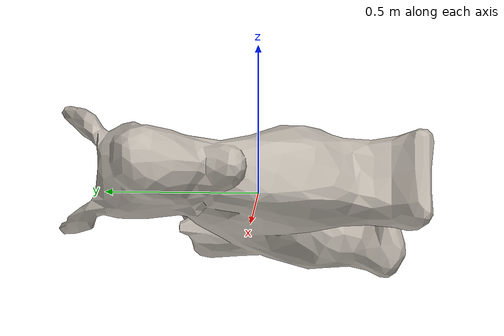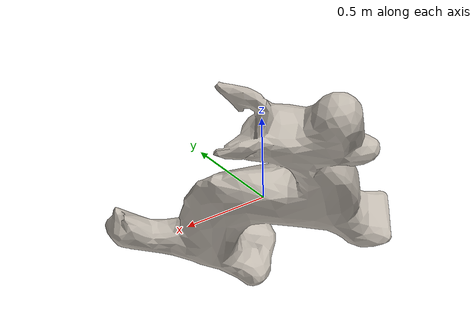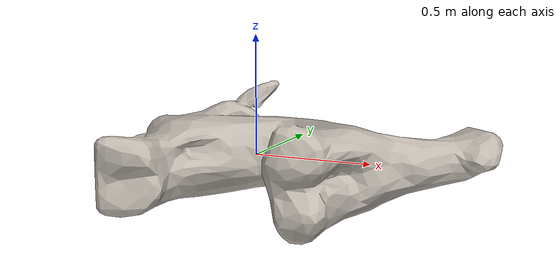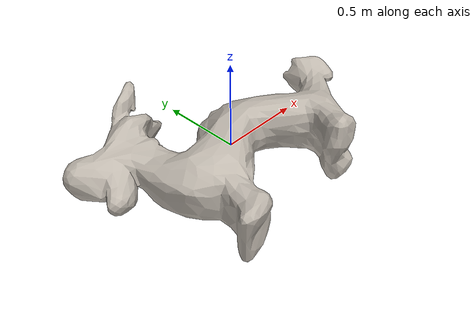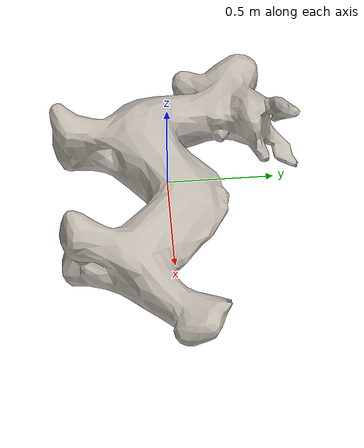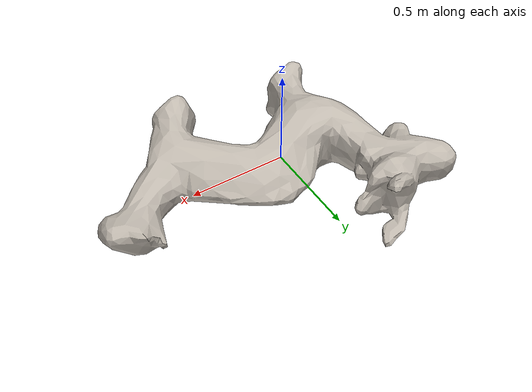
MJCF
<mujoco model="dargon">
  <default>
    <default class="visual">
      <geom group="2" type="mesh" contype="0" conaffinity="0"/>
    </default>
    <default class="collision">
      <geom group="3" type="mesh"/>
    </default>
  </default>
  <asset>
    <texture type="2d" name="dragon" file="dragon.png"/>
    <material name="dargon_0" texture="dragon" specular="0.0" shininess="0.5"/>
    <mesh file="dargon.obj"/>
    <mesh file="dargon_collision_0.obj"/>
    <mesh file="dargon_collision_1.obj"/>
    <mesh file="dargon_collision_2.obj"/>
    <mesh file="dargon_collision_3.obj"/>
    <mesh file="dargon_collision_4.obj"/>
    <mesh file="dargon_collision_5.obj"/>
    <mesh file="dargon_collision_6.obj"/>
    <mesh file="dargon_collision_7.obj"/>
    <mesh file="dargon_collision_8.obj"/>
    <mesh file="dargon_collision_9.obj"/>
    <mesh file="dargon_collision_10.obj"/>
    <mesh file="dargon_collision_11.obj"/>
    <mesh file="dargon_collision_12.obj"/>
    <mesh file="dargon_collision_13.obj"/>
    <mesh file="dargon_collision_14.obj"/>
    <mesh file="dargon_collision_15.obj"/>
    <mesh file="dargon_collision_16.obj"/>
    <mesh file="dargon_collision_17.obj"/>
    <mesh file="dargon_collision_18.obj"/>
  </asset>
  <worldbody>
    <body name="dargon">
      <geom material="dargon_0" mesh="dargon" class="visual"/>
      <geom mesh="dargon_collision_0" rgba="0.9928750847893651 0.4890477901561415 0.3103408783191365 1" class="collision"/>
      <geom mesh="dargon_collision_1" rgba="0.6156002194139181 0.6419735611846575 0.3433017540721812 1" class="collision"/>
      <geom mesh="dargon_collision_2" rgba="0.4546952572539569 0.8542213506483708 0.9957741565448063 1" class="collision"/>
      <geom mesh="dargon_collision_3" rgba="0.08162418972199603 0.019922194209735622 0.1474613453326563 1" class="collision"/>
      <geom mesh="dargon_collision_4" rgba="0.7107556416023058 0.5849302307015951 0.3886684431369385 1" class="collision"/>
      <geom mesh="dargon_collision_5" rgba="0.882164440510648 0.038052539224581516 0.8099820050041631 1" class="collision"/>
      <geom mesh="dargon_collision_6" rgba="0.055769985433132274 0.4153159306528331 0.5913273254931057 1" class="collision"/>
      <geom mesh="dargon_collision_7" rgba="0.574671988677119 0.20258070701156183 0.2533259010228087 1" class="collision"/>
      <geom mesh="dargon_collision_8" rgba="0.6836926973388177 0.7435625890108406 0.30139626010227016 1" class="collision"/>
      <geom mesh="dargon_collision_9" rgba="0.007158067757983222 0.2567582639937953 0.5053464483757746 1" class="collision"/>
      <geom mesh="dargon_collision_10" rgba="0.10614076714132825 0.32894877288933144 0.9631365288970779 1" class="collision"/>
      <geom mesh="dargon_collision_11" rgba="0.8517235565951385 0.39834889664109785 0.8669049141366545 1" class="collision"/>
      <geom mesh="dargon_collision_12" rgba="0.27159781133145644 0.9478040476039628 0.39976578362609005 1" class="collision"/>
      <geom mesh="dargon_collision_13" rgba="0.6186387694773356 0.532856397023139 0.6873373555570884 1" class="collision"/>
      <geom mesh="dargon_collision_14" rgba="0.2896321943885982 0.7106323062229154 0.415347253901182 1" class="collision"/>
      <geom mesh="dargon_collision_15" rgba="0.896166790999301 0.5561110581690948 0.17450929744750177 1" class="collision"/>
      <geom mesh="dargon_collision_16" rgba="0.004647452393080287 0.15643443430274406 0.812920314640311 1" class="collision"/>
      <geom mesh="dargon_collision_17" rgba="0.43008948903436384 0.08498336573335241 0.8901318432400959 1" class="collision"/>
      <geom mesh="dargon_collision_18" rgba="0.19067447366850387 0.5852766578619936 0.35493772762319886 1" class="collision"/>
    </body>
  </worldbody>
</mujoco>
